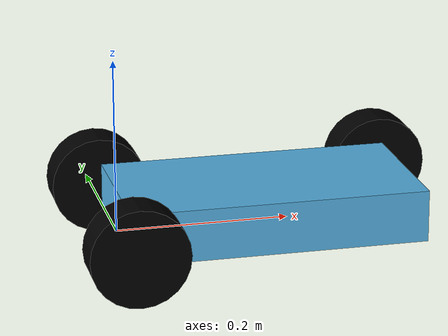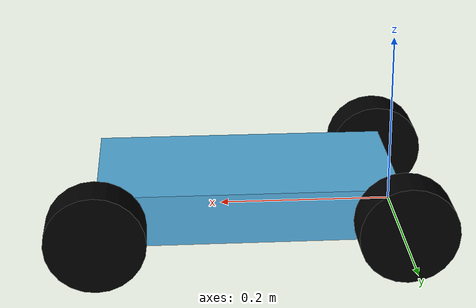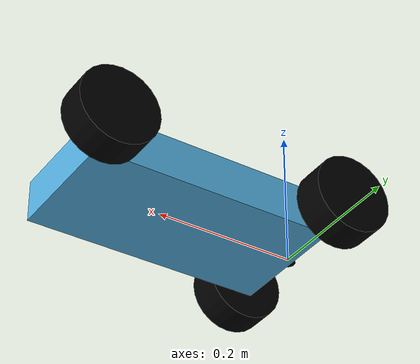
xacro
<?xml version="1.0"?>
<robot xmlns:xacro="http://www.ros.org/wiki/xacro"  name="robot">

    <xacro:include filename="Traxxes.xacro" />

    <xacro:include filename="ros2_control.xacro" />

</robot>

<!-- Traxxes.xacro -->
<robot xmlns:xacro="http://www.ros.org/wiki/xacro">

  <xacro:arg name="wheel_diameter" default="0.112" />
  <xacro:property name="wheel_radius" value="${$(arg wheel_diameter)/2}" />
  <xacro:property name="wheel_width" value="0.047" />
  <xacro:property name="wheel_friction" value="1.5" />
  <xacro:property name="wheelbase_length" value="0.3429" />
  <xacro:property name="wheelbase_width" value="0.25" />
  <xacro:property name="chassis_width" value="0.18" />
  <xacro:property name="wheel_mass" value="0.1" />
  <xacro:property name="total_mass" value="3.0" />
  <xacro:property name="shock_travel" value="0.09" />
  <xacro:property name="chassis_height" value="0.06" />
  <xacro:property name="chassis_elevation" value="-0.01" />
  <xacro:property name="chassis_mass" value="${total_mass-4*wheel_mass}" />

  <xacro:include filename="inertial_macros.xacro" />

  <!-- Base link -->

  <link name="base_link">
    <visual>
      <geometry>
        <cylinder length="0.01" radius="0.01" />
      </geometry>
      <material name="black">
        <color rgba="0 0 0 1" />
      </material>
    </visual>
    <collision>
      <geometry>
        <cylinder length="0.01" radius="0.01" />
      </geometry>
    </collision>
    <xacro:inertial_cylinder mass="0.1" radius="0.01" length="0.01">
      <origin xyz="0 0 0" rpy="0 0 0" />
    </xacro:inertial_cylinder>
  </link>

  <!-- Chassis -->

  <link name="chassis_link">
    <visual>
      <geometry>
        <box size="${wheelbase_length} ${chassis_width} ${chassis_height}" />
      </geometry>
    </visual>
    <collision>
      <geometry>
        <box size="${wheelbase_length} ${chassis_width} ${chassis_height}" />
      </geometry>
    </collision>
    <xacro:inertial_box mass="${chassis_mass}" x="${wheelbase_length}" y="${chassis_width}"
      z="${chassis_height}">
      <origin xyz="0 0 0" rpy="0 0 0" />
    </xacro:inertial_box>
  </link>

  <joint name="chassis_joint" type="fixed">
    <parent link="base_link" />
    <child link="chassis_link" />
    <origin rpy="0 0 0" xyz="${wheelbase_length/2} 0 ${chassis_height/2 + chassis_elevation}" />
  </joint>

  <!-- Rear Left wheel -->
  <link name="back_left_wheel">
    <visual>
      <geometry>
        <cylinder length="${wheel_width}" radius="${wheel_radius}" />
      </geometry>
      <material name="black">
        <color rgba="0 0 0 1" />
      </material>
    </visual>
    <collision>
      <geometry>
        <cylinder length="${wheel_width}" radius="${wheel_radius}" />
      </geometry>
    </collision>
    <xacro:inertial_cylinder mass="${wheel_mass}" radius="${wheel_radius}" length="${wheel_width}">
      <origin xyz="0 0 0" rpy="0 0 0" />
    </xacro:inertial_cylinder>
  </link>

  <joint name="back_left_wheel_joint" type="continuous">
    <parent link="chassis_link" />
    <child link="back_left_wheel" />
    <axis xyz="0 0 1" />
    <origin rpy="${-pi/2} 0 0" xyz="-${wheelbase_length/2} ${wheelbase_width/2} 0" />
  </joint>

  <!-- Rear right wheel -->
  <link name="back_right_wheel">
    <visual>
      <geometry>
        <cylinder length="${wheel_width}" radius="${wheel_radius}" />
      </geometry>
      <material name="black">
        <color rgba="0 0 0 1" />
      </material>
    </visual>
    <collision>
      <geometry>
        <cylinder length="${wheel_width}" radius="${wheel_radius}" />
      </geometry>
    </collision>
    <xacro:inertial_cylinder mass="${wheel_mass}" radius="${wheel_radius}" length="${wheel_width}">
      <origin xyz="0 0 0" rpy="0 0 0" />
    </xacro:inertial_cylinder>
  </link>

  <joint name="back_right_wheel_joint" type="continuous">
    <parent link="chassis_link" />
    <child link="back_right_wheel" />
    <axis xyz="0 0 -1" />
    <origin rpy="${-pi/2} 0 0" xyz="-${wheelbase_length/2} -${wheelbase_width/2} 0" />
  </joint>

  <!-- front_left_ -->
  <link name="front_left_steer">
    <visual>
      <geometry>
        <cylinder length="0.01" radius="0.01" />
      </geometry>
      <material name="black">
        <color rgba="0 0 0 1" />
      </material>
    </visual>
    <collision>
      <geometry>
        <cylinder length="0.01" radius="0.01" />
      </geometry>
    </collision>
    <xacro:inertial_cylinder mass="0.1" radius="0.01" length="0.01">
      <origin xyz="0 0 0" rpy="0 0 0" />
    </xacro:inertial_cylinder>
  </link>

  <link name="dummy_left">
    <visual>
      <geometry>
        <cylinder length="0.01" radius="0.01" />
      </geometry>
      <material name="black">
        <color rgba="0 0 0 1" />
      </material>
    </visual>
    <collision>
      <geometry>
        <cylinder length="0.01" radius="0.01" />
      </geometry>
    </collision>
    <xacro:inertial_cylinder mass="0.1" radius="0.01" length="0.01">
      <origin xyz="0 0 0" rpy="0 0 0" />
    </xacro:inertial_cylinder>
  </link>

  <link name="front_left_wheel">
    <visual>
      <geometry>
        <cylinder length="${wheel_width}" radius="${wheel_radius}" />
      </geometry>
      <material name="black">
        <color rgba="0 0 0 1" />
      </material>
    </visual>
    <collision>
      <geometry>
        <cylinder length="${wheel_width}" radius="${wheel_radius}" />
      </geometry>
    </collision>
    <xacro:inertial_cylinder mass="${wheel_mass}" radius="${wheel_radius}" length="${wheel_width}">
      <origin xyz="0 0 0" rpy="0 0 0" />
    </xacro:inertial_cylinder>
  </link>

  <joint name="front_left_steer_joint" type="revolute">
    <parent link="chassis_link" />
    <child link="front_left_steer" />
    <axis xyz="0 0 1" />
    <origin rpy="0 0 0" xyz="${wheelbase_length/2} ${wheelbase_width/2} 0" />
    <limit lower="-0.7" upper="0.7" effort="0.5" velocity="1.0" />
  </joint>

  <joint name="dummy_left_joint" type="fixed">
    <parent link="front_left_steer" />
    <child link="dummy_left" />
    <origin rpy="0 0 0" xyz="0 0 0" />
  </joint>

  <joint name="front_left_wheel_joint" type="continuous">
    <parent link="dummy_left" />
    <child link="front_left_wheel" />
    <axis xyz="0 0 1" />
    <origin rpy="${-pi/2} 0 0" xyz="0 0 0" />
  </joint>

</robot>
